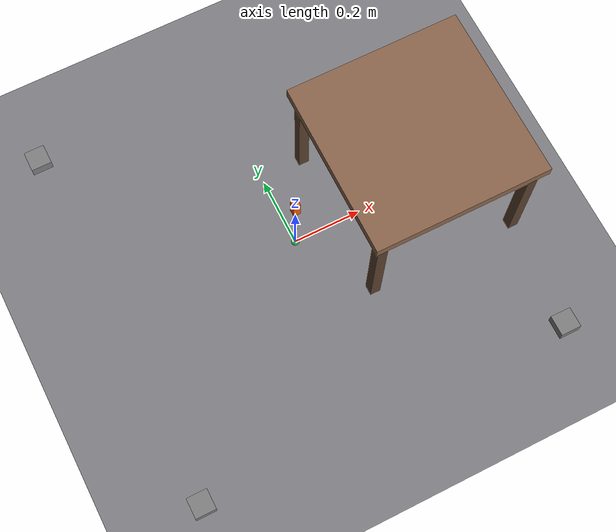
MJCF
<mujoco model="scaffolded_position_correction">
  <option timestep="0.002" integrator="implicitfast" />
  <asset>
    <texture name="ground_tex_0" type="2d" builtin="checker" rgb1="0.5 0.5 0.52" rgb2="0.4 0.4 0.42" width="64" height="64"/>
    <material name="ground_mat_0" texture="ground_tex_0" texrepeat="4 4" reflectance="0.1"/>
    <texture name="ground_tex_1" type="2d" builtin="checker" rgb1="0.45 0.42 0.38" rgb2="0.3 0.28 0.25" width="64" height="64"/>
    <material name="ground_mat_1" texture="ground_tex_1" texrepeat="6 6" reflectance="0.05"/>
    <texture name="ground_tex_2" type="2d" builtin="gradient" rgb1="0.55 0.6 0.65" rgb2="0.25 0.28 0.32" width="64" height="64"/>
    <material name="ground_mat_2" texture="ground_tex_2" reflectance="0.0"/>

    <texture name="table_tex_0" type="2d" builtin="checker" rgb1="0.55 0.4 0.3" rgb2="0.45 0.32 0.24" width="64" height="64"/>
    <material name="table_mat_0" texture="table_tex_0" texrepeat="3 3" reflectance="0.1"/>
    <texture name="table_tex_1" type="2d" builtin="checker" rgb1="0.6 0.55 0.5" rgb2="0.4 0.36 0.3" width="64" height="64"/>
    <material name="table_mat_1" texture="table_tex_1" texrepeat="2 2" reflectance="0.15"/>
    <texture name="table_tex_2" type="2d" builtin="gradient" rgb1="0.5 0.35 0.25" rgb2="0.25 0.18 0.12" width="64" height="64"/>
    <material name="table_mat_2" texture="table_tex_2" reflectance="0.05"/>
  </asset>
  <worldbody>
    <light pos="0.4 0 1.5" dir="0 0 -1" diffuse="0.8 0.8 0.8"/>
    <light pos="0.7 -0.4 1.0" dir="-0.4 0.4 -0.7" diffuse="0.4 0.4 0.4"/>

    <geom name="ground" type="plane" pos="0 0 0" size="0.8 0.8 0.01" contype="0" conaffinity="0" material="ground_mat_0" rgba="0.5 0.5 0.52 1"/>

    <body name="clutter_0" pos="-0.55 -0.55 0">
      <geom name="clutter_0_geom" type="box" size="0.03 0.03 0.03" contype="0" conaffinity="0" rgba="0.5 0.5 0.5 1"/>
    </body>
    <body name="clutter_1" pos="-0.55 0.55 0">
      <geom name="clutter_1_geom" type="box" size="0.03 0.03 0.03" contype="0" conaffinity="0" rgba="0.5 0.5 0.5 1"/>
    </body>
    <body name="clutter_2" pos="0.55 -0.55 0">
      <geom name="clutter_2_geom" type="box" size="0.03 0.03 0.03" contype="0" conaffinity="0" rgba="0.5 0.5 0.5 1"/>
    </body>

    <body name="table" pos="0.35 0 0">
      <geom name="table_top" type="box" pos="0 0 0.38" size="0.25 0.25 0.015" contype="0" conaffinity="0" material="table_mat_0" rgba="0.55 0.4 0.3 1"/>
      <geom name="table_leg_1" type="box" pos="0.22 0.22 0.19" size="0.015 0.015 0.19" contype="0" conaffinity="0" rgba="0.35 0.25 0.18 1"/>
      <geom name="table_leg_2" type="box" pos="-0.22 0.22 0.19" size="0.015 0.015 0.19" contype="0" conaffinity="0" rgba="0.35 0.25 0.18 1"/>
      <geom name="table_leg_3" type="box" pos="0.22 -0.22 0.19" size="0.015 0.015 0.19" contype="0" conaffinity="0" rgba="0.35 0.25 0.18 1"/>
      <geom name="table_leg_4" type="box" pos="-0.22 -0.22 0.19" size="0.015 0.015 0.19" contype="0" conaffinity="0" rgba="0.35 0.25 0.18 1"/>
    </body>

    <body name="moving_object" pos="0.0 0.0 0.25" gravcomp="1">
      <freejoint name="moving_object_free"/>
      <geom name="moving_object_geom" type="box" size="0.01 0.01 0.03" mass="0.04" rgba="0.95 0.35 0.05 1"/>
    </body>
    <site name="target_site" pos="0.0 0.0 0.1" size="0.005" rgba="1 0 0 0.5"/>

    <body name="stabilizer_ee" pos="0 0 0">
      <joint name="stab_x" type="slide" axis="1 0 0" damping="90"/>
      <joint name="stab_y" type="slide" axis="0 1 0" damping="90"/>
      <joint name="stab_z" type="slide" axis="0 0 1" damping="90"/>
      <inertial pos="0 0 0" mass="0.1" diaginertia="1e-5 1e-5 1e-5"/>
      <geom name="stabilizer_ee_geom" type="sphere" size="0.012" contype="0" conaffinity="0" rgba="0.2 0.8 0.3 1"/>
      <site name="stabilizer_ee_site" pos="0 0 0" size="0.005"/>
    </body>
  </worldbody>
  <equality>
    <weld name="stabilizer_weld" body1="stabilizer_ee" body2="moving_object"
          solref="0.002 1" solimp="0.95 0.99 0.0001 0.5 2" active="false"/>
  </equality>
  <actuator>
    <position name="stab_x" joint="stab_x" kp="20000" forcerange="-3000 3000"/>
    <position name="stab_y" joint="stab_y" kp="20000" forcerange="-3000 3000"/>
    <position name="stab_z" joint="stab_z" kp="20000" forcerange="-3000 3000"/>
  </actuator>
</mujoco>
